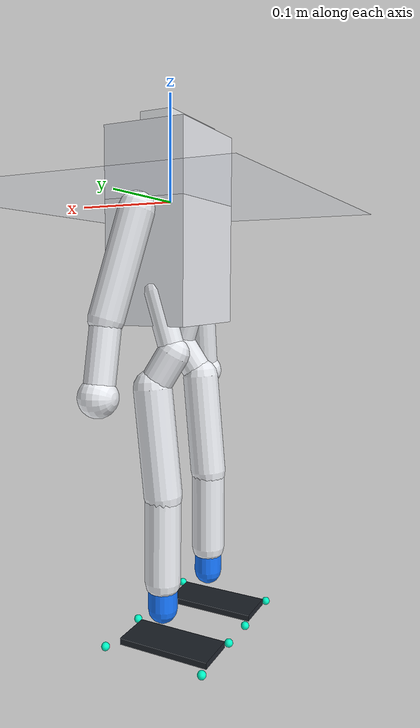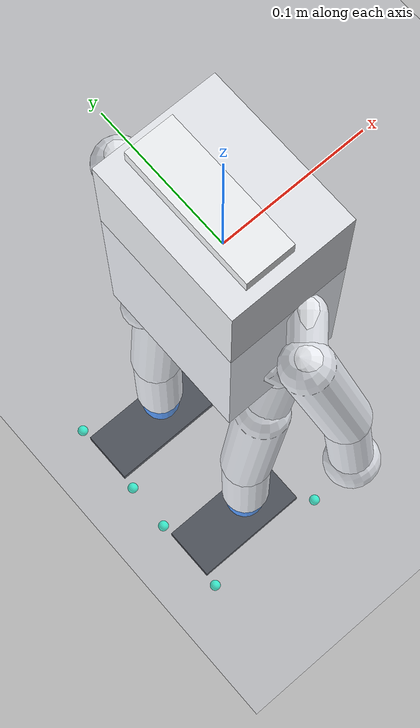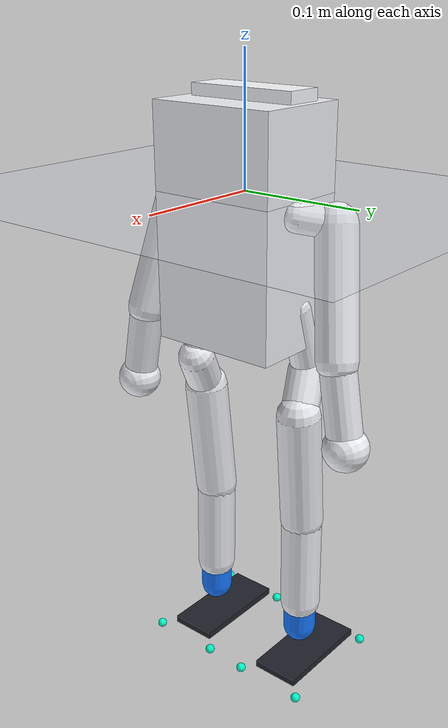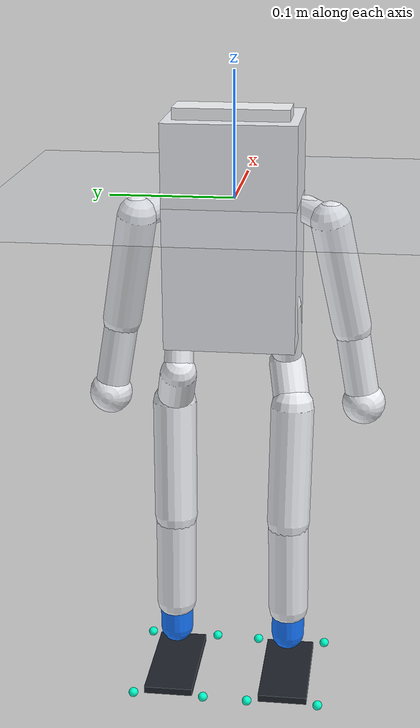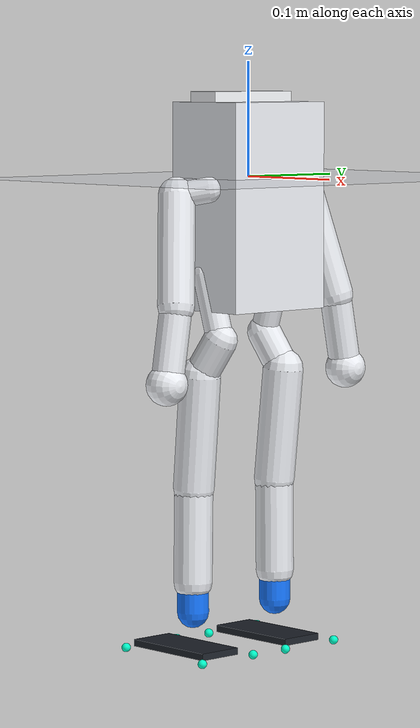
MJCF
<?xml version='1.0' encoding='utf-8'?>
<mujoco model="zeroth01_physical_mount_v4_original_minimal_18dof_mjx">
  <compiler angle="radian" coordinate="local" autolimits="true" />
  <option timestep="0.002" gravity="0 0 -9.81" integrator="implicitfast" />
  <size njmax="2000" nconmax="400" />
  <default>
    <joint damping="0.035" armature="0.002" frictionloss="0.01" />
    <geom margin="0.001" condim="3" friction="1.0 0.02 0.001" />
  </default>
  <visual>
    <headlight diffuse="0.75 0.75 0.75" ambient="0.35 0.35 0.35" />
    <rgba haze="0.15 0.18 0.22 1" />
  </visual>
  <worldbody>
    <light pos="0 -1 1.2" dir="0 0 -1" directional="true" />
    <geom name="ground" type="plane" size="2 2 0.02" rgba="0.82 0.84 0.88 1" friction="1.2 0.02 0.001" />
    <body name="Z_BOT2_MASTER_BODY_SKELETON" pos="0 0 0" quat="0.707388269167 0 0 0.706825181105">
      <freejoint name="floating_base" />
      <inertial pos="0 0 -0.025" mass="1.041" diaginertia="0.00336706082061 0.00376827906175 0.00151393988236" />
      <geom name="torso_collision" type="box" size="0.0525318364224 0.0400417944696 0.09" pos="0 0 -0.025" rgba="0.93 0.94 0.96 1" friction="1.0 0.02 0.001" />
      <site name="imu_site" pos="0 0 0.02" size="0.006" rgba="0.2 1 0.2 1" />
      <body name="Z_BOT2_MASTER_SHOULDER2" pos="0.055995 -0.01061 -0.009528" quat="1.22474523098e-07 1.22474483074e-07 0.707106665647 0.707106896726">
        <joint name="left_shoulder_yaw" type="hinge" axis="0 0 1" range="-0.12 0.12" limited="true" />
        <inertial pos="-0.0104225 -0.00245 0.0094" mass="0.02" diaginertia="3.98041666667e-06 5.83389004167e-06 4.26550670833e-06" />
        <geom type="capsule" fromto="0 0 0 -0.020845 -0.0049 0.0188" size="0.011" name="Z_BOT2_MASTER_SHOULDER2_collision" rgba="0.92 0.93 0.95 1" />
        <body name="3215_1Flange" pos="-0.020845 -0.0049 0.0188" quat="0.500000163397 -0.5 0.499999836603 -0.5">
          <joint name="left_shoulder_pitch" type="hinge" axis="0 0 1" range="-0.47123889 0.47123889" limited="true" />
          <inertial pos="0.046492 0.0099 -0.0093" mass="0.149" diaginertia="6.51080333333e-05 0.000225751889845 0.000227277649845" />
          <geom type="capsule" fromto="0 0 0 0.092984 0.0198 -0.0186" size="0.016" name="3215_1Flange_collision" rgba="0.92 0.93 0.95 1" />
          <body name="R_ARM_MIRROR_1" pos="0.092984 0.0198 -0.0186" quat="-1.22474523098e-07 -1.22474483074e-07 0.707106665647 0.707106896726">
            <joint name="left_elbow_yaw" type="hinge" axis="0 0 -1" range="-0.34 0.24" limited="true" />
            <inertial pos="-0.033103 -0.005889 0.00063" mass="0.03" diaginertia="6.09609221e-06 2.432729509e-05 2.61426493e-05" />
            <geom type="capsule" fromto="0 0 0 -0.066206 -0.011778 0.00126" size="0.014" name="R_ARM_MIRROR_1_collision" rgba="0.92 0.93 0.95 1" />
            <body name="FINGER_1" pos="-0.066206 -0.011778 0.00126" quat="-9.93463784844e-08 0.573576508925 0.819151993472 -1.41881305656e-07">
              <inertial pos="0 0 0" mass="0.005" diaginertia="1.08e-06 1.08e-06 1.08e-06" />
              <geom type="sphere" size="0.018" name="FINGER_1_collision" rgba="0.94 0.95 0.97 1" />
            </body>
          </body>
        </body>
      </body>
      <body name="Z_BOT2_MASTER_SHOULDER2_2" pos="-0.055995 -0.01061 -0.009528" quat="0.707106896726 -0.707106665647 0 0">
        <joint name="right_shoulder_yaw" type="hinge" axis="0 0 1" range="-0.12 0.12" limited="true" />
        <inertial pos="-0.0104225 0.00245 0.0094" mass="0.02" diaginertia="3.98041666667e-06 5.83389004167e-06 4.26550670833e-06" />
        <geom type="capsule" fromto="0 0 0 -0.020845 0.0049 0.0188" size="0.011" name="Z_BOT2_MASTER_SHOULDER2_2_collision" rgba="0.92 0.93 0.95 1" />
        <body name="3215_1Flange_2" pos="-0.020845 0.0049 0.0188" quat="0.500000163397 0.5 0.499999836603 0.5">
          <joint name="right_shoulder_pitch" type="hinge" axis="0 0 1" range="-0.47123889 0.47123889" limited="true" />
          <inertial pos="0.046492 -0.0099 -0.0093" mass="0.149" diaginertia="6.51080333333e-05 0.000225751889845 0.000227277649845" />
          <geom type="capsule" fromto="0 0 0 0.092984 -0.0198 -0.0186" size="0.016" name="3215_1Flange_2_collision" rgba="0.92 0.93 0.95 1" />
          <body name="L_ARM_MIRROR_1" pos="0.092984 -0.0198 -0.0186" quat="0.500000163397 -0.5 -0.5 -0.499999836603">
            <joint name="right_elbow_yaw" type="hinge" axis="0 0 1" range="-0.24 0.34" limited="true" />
            <inertial pos="-0.005889 0.033103 -0.00063" mass="0.03" diaginertia="2.432729509e-05 6.09609221e-06 2.61426493e-05" />
            <geom type="capsule" fromto="0 0 0 -0.011778 0.066206 -0.00126" size="0.014" name="L_ARM_MIRROR_1_collision" rgba="0.92 0.93 0.95 1" />
            <body name="FINGER_1_2" pos="-0.011778 0.066206 -0.00126" quat="0.984807740023 3.29132692615e-21 -8.69526751844e-21 0.173648251331">
              <inertial pos="0 0 0" mass="0.005" diaginertia="1.08e-06 1.08e-06 1.08e-06" />
              <geom type="sphere" size="0.018" name="FINGER_1_2_collision" rgba="0.94 0.95 0.97 1" />
            </body>
          </body>
        </body>
      </body>
      <body name="U_HIP_L" pos="0.042808 0.007735 -0.083418" quat="3.00000078125e-14 -1.7320510331e-07 1 -1.7320510331e-07">
        <joint name="left_hip_yaw" type="hinge" axis="0 0 1" range="-0.322013241 0.026179939" limited="true" />
        <inertial pos="3.46944695195e-18 0.00885 0.0282" mass="0.02" diaginertia="1.367175e-05 1.17336e-05 3.85815e-06" />
        <geom type="capsule" fromto="0 0 0 6.93889390391e-18 0.0177 0.0564" size="0.012" name="U_HIP_L_collision" rgba="0.92 0.93 0.95 1" />
        <body name="3215_BothFlange_5" pos="0 0.0177 0.0564" quat="0.707106896726 -0.707106665647 0 0">
          <joint name="left_hip_roll" type="hinge" axis="0 0 -1" range="-0.06 0.22" limited="true" />
          <inertial pos="-0.0032 -0.016 -0.00895" mass="0.0995" diaginertia="5.08976495833e-05 3.00106095833e-05 4.28592933333e-05" />
          <geom type="capsule" fromto="0 0 0 -0.0064 -0.032 -0.0179" size="0.015" name="3215_BothFlange_5_collision" rgba="0.92 0.93 0.95 1" />
          <body name="3215_BothFlange_9" pos="-0.0064 -0.032 -0.0179" quat="0.500000163397 0.5 -0.499999836603 -0.5">
            <joint name="left_hip_pitch" type="hinge" axis="0 0 1" range="-0.027495556 0.412327408" limited="true" />
            <inertial pos="0.05 0.005 -0.00063" mass="0.1745" diaginertia="5.09584730167e-05 0.000289150973017 0.000299732833333" />
            <geom type="capsule" fromto="0 0 0 0.1 0.01 -0.00126" size="0.018" name="3215_BothFlange_9_collision" rgba="0.92 0.93 0.95 1" />
            <body name="3215_BothFlange_13" pos="0.1 0.01 -0.00126" quat="1 0 0 0">
              <joint name="left_knee_pitch" type="hinge" axis="0 0 1" range="-0.83285928 0" limited="true" />
              <inertial pos="0.041 -6.0588449674e-09 0.000399997058844" mass="0.205" diaginertia="4.0436940416e-05 0.000250561926339 0.000249621680743" />
              <geom type="capsule" fromto="0 0 0 0.082 -1.21176899348e-08 0.000799994117688" size="0.017" name="3215_BothFlange_13_collision" rgba="0.92 0.93 0.95 1" />
              <body name="left_ankle_roll_carrier" pos="0.082 -1.21176899348e-08 0.000799994117688" quat="1.22474523098e-07 0.707106896726 0.707106665647 1.22474483074e-07">
                <joint name="left_ankle_pitch" type="hinge" axis="0 0 1" range="-0.66415928 0" limited="true" />
                <inertial pos="1.3249998581e-08 0.01325 2.59899945315e-10" mass="0.095" diaginertia="2.97211460638e-05 1.24133453121e-05 2.97211575817e-05" />
                <geom type="capsule" fromto="0 0 0 2.64999971619e-08 0.0265 5.1979989063e-10" size="0.014" name="left_ankle_roll_carrier_collision" rgba="0.086 0.467 1 1" />
                <body name="FOOT" pos="2.64999971619e-08 0.0265 5.1979989063e-10" quat="1 0 0 0">
                  <joint name="left_ankle_roll" type="hinge" axis="-0.999999683467 1.00001518318e-06 -0.000795653505717" range="-0.25 0.25" limited="true" />
                  <inertial pos="0.0100000294347 0.0326000299998 7.95717450989e-06" mass="0.07" diaginertia="1.0050116321e-05 5.71243454371e-05 4.74942418244e-05" />
                  <geom name="FOOT_collision" type="box" size="0.0450162996529 0.00300004538648 0.0205357979777" pos="0.0100000294347 0.0326000299998 7.95717450989e-06" rgba="0.12 0.14 0.17 1" friction="1.2 0.02 0.001" />
                  <site name="left_sole_front_medial" pos="-0.0450238197612 0.0356000844361 0.0299641867946" size="0.004" rgba="0 1 0.8 1" />
                  <site name="left_sole_front_lateral" pos="-0.0449760805508 0.0356000855652 -0.0300357942135" size="0.004" rgba="0 1 0.8 1" />
                  <site name="left_sole_rear_medial" pos="0.0549761485856 0.0355999844346 0.0300437521451" size="0.004" rgba="0 1 0.8 1" />
                  <site name="left_sole_rear_lateral" pos="0.0550238877959 0.0355999855637 -0.0299562288629" size="0.004" rgba="0 1 0.8 1" />
                </body>
              </body>
            </body>
          </body>
        </body>
      </body>
      <body name="U_HIP_R" pos="-0.042868 0.007735 -0.083418" quat="3.00000078125e-14 -1.7320510331e-07 1 -1.7320510331e-07">
        <joint name="right_hip_yaw" type="hinge" axis="0 0 1" range="-0.026179939 0.322013241" limited="true" />
        <inertial pos="0 -0.00885 0.0282" mass="0.02" diaginertia="1.367175e-05 1.17336e-05 3.85815e-06" />
        <geom type="capsule" fromto="0 0 0 0 -0.0177 0.0564" size="0.012" name="U_HIP_R_collision" rgba="0.92 0.93 0.95 1" />
        <body name="3215_BothFlange_6" pos="0 -0.0177 0.0564" quat="1.22474523098e-07 -1.22474483074e-07 -0.707106665647 0.707106896726">
          <joint name="right_hip_roll" type="hinge" axis="0 0 1" range="-0.22 0.06" limited="true" />
          <inertial pos="-0.0032 -0.016 -0.00945" mass="0.0995" diaginertia="5.17002829167e-05 3.08132429167e-05 4.28592933333e-05" />
          <geom type="capsule" fromto="0 0 0 -0.0064 -0.032 -0.0189" size="0.015" name="3215_BothFlange_6_collision" rgba="0.92 0.93 0.95 1" />
          <body name="3215_BothFlange_10" pos="-0.0064 -0.032 -0.0189" quat="0.500000163397 0.5 -0.499999836603 -0.5">
            <joint name="right_hip_pitch" type="hinge" axis="0 0 1" range="-0.412327408 0.027495556" limited="true" />
            <inertial pos="0.05 -0.005 -0.00063" mass="0.1745" diaginertia="5.09584730167e-05 0.000289150973017 0.000299732833333" />
            <geom type="capsule" fromto="0 0 0 0.1 -0.01 -0.00126" size="0.018" name="3215_BothFlange_10_collision" rgba="0.92 0.93 0.95 1" />
            <body name="3215_BothFlange_14" pos="0.1 -0.01 -0.00126" quat="1 0 0 0">
              <joint name="right_knee_pitch" type="hinge" axis="0 0 1" range="0 0.83285928" limited="true" />
              <inertial pos="0.041 1.76538750632e-10 0.000499997058847" mass="0.205" diaginertia="4.06754100426e-05 0.000250800409632 0.000249621667077" />
              <geom type="capsule" fromto="0 0 0 0.082 3.53077501264e-10 0.000999994117694" size="0.017" name="3215_BothFlange_14_collision" rgba="0.92 0.93 0.95 1" />
              <body name="right_ankle_roll_carrier" pos="0.082 3.53077501264e-10 0.000999994117694" quat="1.22474523098e-07 0.707106896726 -0.707106665647 -1.22474483074e-07">
                <joint name="right_ankle_pitch" type="hinge" axis="0 0 1" range="0 0.66415928" limited="true" />
                <inertial pos="4.58993665298e-09 -0.01325 -8.91996594296e-09" mass="0.095" diaginertia="2.97211537424e-05 1.24133453121e-05 2.97211499031e-05" />
                <geom type="capsule" fromto="0 0 0 9.17987330595e-09 -0.0265 -1.78399318859e-08" size="0.014" name="right_ankle_roll_carrier_collision" rgba="0.086 0.467 1 1" />
                <body name="FOOT_2" pos="9.17987330595e-09 -0.0265 -1.78399318859e-08" quat="1 0 0 0">
                  <joint name="right_ankle_roll" type="hinge" axis="0.999999683743 3.46945608555e-07 -0.00079530709562" range="-0.25 0.25" limited="true" />
                  <inertial pos="0.0100000081304 -0.0326000365305 -7.97501746537e-06" mass="0.07" diaginertia="1.00501010295e-05 5.71243133713e-05 4.7494220576e-05" />
                  <geom name="FOOT_2_collision" type="box" size="0.0450162906031 0.0030000294076 0.0205357843557" pos="0.0100000081304 -0.0326000365305 -7.97501746537e-06" rgba="0.12 0.14 0.17 1" friction="1.2 0.02 0.001" />
                  <site name="right_sole_front_medial" pos="-0.0450238326491 -0.0356000354247 -0.0299642256591" size="0.004" rgba="0 1 0.8 1" />
                  <site name="right_sole_front_lateral" pos="-0.0449761142233 -0.0356000758004 0.0300357553655" size="0.004" rgba="0 1 0.8 1" />
                  <site name="right_sole_rear_medial" pos="0.0549761357252 -0.0356000007301 -0.0300437563687" size="0.004" rgba="0 1 0.8 1" />
                  <site name="right_sole_rear_lateral" pos="0.055023854151 -0.0356000411059 0.0299562246559" size="0.004" rgba="0 1 0.8 1" />
                </body>
              </body>
            </body>
          </body>
        </body>
      </body>
      <body name="v4_head_shell">
        <inertial pos="0 0.009189728 0.03883662" mass="0.055" diaginertia="2.71262769951e-05 6.04680248301e-05 4.215091507e-05" />
        <geom name="v4_head_shell_collision" type="box" size="0.045375002 0.0155000005 0.0352046175" pos="0 0.009189728 0.03883662" rgba="0.97 0.98 0.99 1" />
        <body name="m5stack_unitv2">
          <inertial pos="0 0.006 0.045" mass="0.018" diaginertia="1.74684126905e-06 4.32e-06 4.33884126905e-06" />
          <geom name="m5stack_unitv2_visual" type="box" size="0.024 0.0121301365 0.012" pos="0 0.006 0.045" rgba="0 0.72 0.85 1" contype="0" conaffinity="0" />
          <site name="unitv2_camera_site" pos="-0.014 -0.0075102725 0.045" size="0.004" rgba="0 0.8 1 1" />
        </body>
      </body>
    </body>
  </worldbody>
  <actuator>
    <motor name="left_shoulder_yaw_motor" joint="left_shoulder_yaw" gear="1" ctrllimited="true" ctrlrange="-1.2552512 1.2552512" />
    <motor name="right_shoulder_yaw_motor" joint="right_shoulder_yaw" gear="1" ctrllimited="true" ctrlrange="-1.2552512 1.2552512" />
    <motor name="left_shoulder_pitch_motor" joint="left_shoulder_pitch" gear="1" ctrllimited="true" ctrlrange="-1.2552512 1.2552512" />
    <motor name="right_shoulder_pitch_motor" joint="right_shoulder_pitch" gear="1" ctrllimited="true" ctrlrange="-1.2552512 1.2552512" />
    <motor name="left_elbow_yaw_motor" joint="left_elbow_yaw" gear="1" ctrllimited="true" ctrlrange="-1.2552512 1.2552512" />
    <motor name="right_elbow_yaw_motor" joint="right_elbow_yaw" gear="1" ctrllimited="true" ctrlrange="-1.2552512 1.2552512" />
    <motor name="left_hip_yaw_motor" joint="left_hip_yaw" gear="1" ctrllimited="true" ctrlrange="-1.2552512 1.2552512" />
    <motor name="right_hip_yaw_motor" joint="right_hip_yaw" gear="1" ctrllimited="true" ctrlrange="-1.2552512 1.2552512" />
    <motor name="left_hip_roll_motor" joint="left_hip_roll" gear="1" ctrllimited="true" ctrlrange="-1.2552512 1.2552512" />
    <motor name="right_hip_roll_motor" joint="right_hip_roll" gear="1" ctrllimited="true" ctrlrange="-1.2552512 1.2552512" />
    <motor name="left_hip_pitch_motor" joint="left_hip_pitch" gear="1" ctrllimited="true" ctrlrange="-1.2552512 1.2552512" />
    <motor name="right_hip_pitch_motor" joint="right_hip_pitch" gear="1" ctrllimited="true" ctrlrange="-1.2552512 1.2552512" />
    <motor name="left_knee_pitch_motor" joint="left_knee_pitch" gear="1" ctrllimited="true" ctrlrange="-1.2552512 1.2552512" />
    <motor name="right_knee_pitch_motor" joint="right_knee_pitch" gear="1" ctrllimited="true" ctrlrange="-1.2552512 1.2552512" />
    <motor name="left_ankle_pitch_motor" joint="left_ankle_pitch" gear="1" ctrllimited="true" ctrlrange="-1.2552512 1.2552512" />
    <motor name="right_ankle_pitch_motor" joint="right_ankle_pitch" gear="1" ctrllimited="true" ctrlrange="-1.2552512 1.2552512" />
    <motor name="left_ankle_roll_motor" joint="left_ankle_roll" gear="1" ctrllimited="true" ctrlrange="-1.2552512 1.2552512" />
    <motor name="right_ankle_roll_motor" joint="right_ankle_roll" gear="1" ctrllimited="true" ctrlrange="-1.2552512 1.2552512" />
  </actuator>
  <sensor>
    <gyro name="imu_gyro" site="imu_site" />
    <accelerometer name="imu_accelerometer" site="imu_site" />
    <touch name="left_front_medial_touch" site="left_sole_front_medial" />
    <touch name="left_front_lateral_touch" site="left_sole_front_lateral" />
    <touch name="left_rear_medial_touch" site="left_sole_rear_medial" />
    <touch name="left_rear_lateral_touch" site="left_sole_rear_lateral" />
    <touch name="right_front_medial_touch" site="right_sole_front_medial" />
    <touch name="right_front_lateral_touch" site="right_sole_front_lateral" />
    <touch name="right_rear_medial_touch" site="right_sole_rear_medial" />
    <touch name="right_rear_lateral_touch" site="right_sole_rear_lateral" />
  </sensor>
  <keyframe>
    <key name="official_standing" qpos="0 0 0.415918040663 0.707388269167 0 0 0.706825181105 0 0 0 0 0 0 0 0 0 0 0 0 0 0 0 0 0 0" />
    <key name="symmetric_crouch" qpos="0 0 0.415918040663 0.707388269167 0 0 0.706825181105 0 0 0 0 0 0 0 0 0 0 0.18 -0.18 -0.36 0.36 -0.18 0.18 0 0" />
  </keyframe>
</mujoco>
